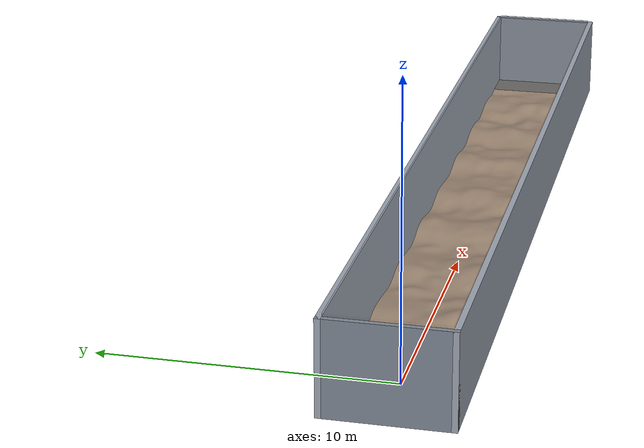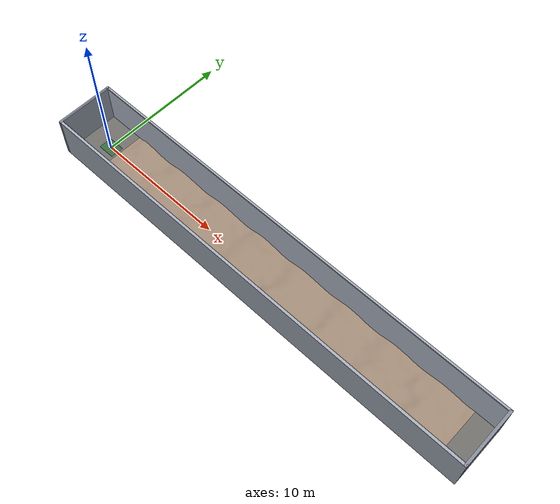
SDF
<?xml version='1.0' encoding='utf-8'?>
<sdf version="1.9">
  <world name="rocky_hall">
    <physics name="2ms_training" type="ignored">
      <max_step_size>0.002</max_step_size>
      <real_time_factor>1.0</real_time_factor>
    </physics>
    <plugin filename="gz-sim-physics-system" name="gz::sim::systems::Physics" />
    <plugin filename="gz-sim-user-commands-system" name="gz::sim::systems::UserCommands" />
    <plugin filename="gz-sim-scene-broadcaster-system" name="gz::sim::systems::SceneBroadcaster" />
    <gravity>0 0 -9.80665</gravity>
    <scene>
      <ambient>0.28 0.28 0.30 1</ambient>
      <background>0.08 0.09 0.12 1</background>
      <shadows>true</shadows>
      <grid>false</grid>
    </scene>
    <light name="lamp_01" type="point">
      <pose>2 0 2.7 0 0 0</pose>
      <cast_shadows>false</cast_shadows>
      <diffuse>0.95 0.92 0.84 1</diffuse>
      <specular>0.15 0.15 0.15 1</specular>
      <attenuation>
        <range>11</range>
        <constant>0.4</constant>
        <linear>0.08</linear>
        <quadratic>0.01</quadratic>
      </attenuation>
    </light>
    <light name="lamp_02" type="point">
      <pose>10 0 2.7 0 0 0</pose>
      <cast_shadows>false</cast_shadows>
      <diffuse>0.95 0.92 0.84 1</diffuse>
      <specular>0.15 0.15 0.15 1</specular>
      <attenuation>
        <range>11</range>
        <constant>0.4</constant>
        <linear>0.08</linear>
        <quadratic>0.01</quadratic>
      </attenuation>
    </light>
    <light name="lamp_03" type="point">
      <pose>18 0 2.7 0 0 0</pose>
      <cast_shadows>false</cast_shadows>
      <diffuse>0.95 0.92 0.84 1</diffuse>
      <specular>0.15 0.15 0.15 1</specular>
      <attenuation>
        <range>11</range>
        <constant>0.4</constant>
        <linear>0.08</linear>
        <quadratic>0.01</quadratic>
      </attenuation>
    </light>
    <light name="lamp_04" type="point">
      <pose>26 0 2.7 0 0 0</pose>
      <cast_shadows>false</cast_shadows>
      <diffuse>0.95 0.92 0.84 1</diffuse>
      <specular>0.15 0.15 0.15 1</specular>
      <attenuation>
        <range>11</range>
        <constant>0.4</constant>
        <linear>0.08</linear>
        <quadratic>0.01</quadratic>
      </attenuation>
    </light>
    <model name="enclosed_hall">
      <static>true</static>
      <link name="structure">
        <collision name="left_wall_collision">
          <pose>15 2.1 1.35 0 0 0</pose>
          <geometry>
            <box>
              <size>34.4 0.2 3.3</size>
            </box>
          </geometry>
        </collision>
        <visual name="left_wall_visual">
          <pose>15 2.1 1.35 0 0 0</pose>
          <geometry>
            <box>
              <size>34.4 0.2 3.3</size>
            </box>
          </geometry>
          <material>
            <ambient>0.52 0.55 0.60 1</ambient>
            <diffuse>0.62 0.65 0.70 1</diffuse>
          </material>
        </visual>
        <collision name="right_wall_collision">
          <pose>15 -2.1 1.35 0 0 0</pose>
          <geometry>
            <box>
              <size>34.4 0.2 3.3</size>
            </box>
          </geometry>
        </collision>
        <visual name="right_wall_visual">
          <pose>15 -2.1 1.35 0 0 0</pose>
          <geometry>
            <box>
              <size>34.4 0.2 3.3</size>
            </box>
          </geometry>
          <material>
            <ambient>0.52 0.55 0.60 1</ambient>
            <diffuse>0.62 0.65 0.70 1</diffuse>
          </material>
        </visual>
        <collision name="rear_wall_collision">
          <pose>-2.1 0 1.35 0 0 0</pose>
          <geometry>
            <box>
              <size>0.2 4.4 3.3</size>
            </box>
          </geometry>
        </collision>
        <visual name="rear_wall_visual">
          <pose>-2.1 0 1.35 0 0 0</pose>
          <geometry>
            <box>
              <size>0.2 4.4 3.3</size>
            </box>
          </geometry>
          <material>
            <ambient>0.40 0.43 0.48 1</ambient>
            <diffuse>0.50 0.53 0.58 1</diffuse>
          </material>
        </visual>
        <collision name="front_wall_collision">
          <pose>32.1 0 1.35 0 0 0</pose>
          <geometry>
            <box>
              <size>0.2 4.4 3.3</size>
            </box>
          </geometry>
        </collision>
        <visual name="front_wall_visual">
          <pose>32.1 0 1.35 0 0 0</pose>
          <geometry>
            <box>
              <size>0.2 4.4 3.3</size>
            </box>
          </geometry>
          <material>
            <ambient>0.40 0.43 0.48 1</ambient>
            <diffuse>0.50 0.53 0.58 1</diffuse>
          </material>
        </visual>
        <collision name="ceiling_collision">
          <pose>15 0 3.05 0 0 0</pose>
          <geometry>
            <box>
              <size>34 4 0.1</size>
            </box>
          </geometry>
        </collision>
        <visual name="ceiling_visual">
          <pose>15 0 3.05 0 0 0</pose>
          <geometry>
            <box>
              <size>34 4 0.1</size>
            </box>
          </geometry>
          <transparency>0.70</transparency>
          <cast_shadows>false</cast_shadows>
          <material>
            <ambient>0.45 0.47 0.52 1</ambient>
            <diffuse>0.55 0.57 0.62 1</diffuse>
          </material>
        </visual>
        <collision name="spawn_floor_collision">
          <pose>-0.600000 0 -0.05 0 0 0</pose>
          <geometry>
            <box>
              <size>2.800000 4 0.1</size>
            </box>
          </geometry>
          <surface>
            <friction>
              <ode>
                <mu>1.0</mu>
                <mu2>1.0</mu2>
              </ode>
            </friction>
          </surface>
        </collision>
        <visual name="spawn_floor_visual">
          <pose>-0.600000 0 -0.05 0 0 0</pose>
          <geometry>
            <box>
              <size>2.800000 4 0.1</size>
            </box>
          </geometry>
          <material>
            <ambient>0.38 0.36 0.32 1</ambient>
            <diffuse>0.38 0.36 0.32 1</diffuse>
          </material>
        </visual>
        <collision name="goal_floor_collision">
          <pose>31.250000 0 -0.05 0 0 0</pose>
          <geometry>
            <box>
              <size>1.500000 4 0.1</size>
            </box>
          </geometry>
          <surface>
            <friction>
              <ode>
                <mu>1.0</mu>
                <mu2>1.0</mu2>
              </ode>
            </friction>
          </surface>
        </collision>
        <visual name="goal_floor_visual">
          <pose>31.250000 0 -0.05 0 0 0</pose>
          <geometry>
            <box>
              <size>1.500000 4 0.1</size>
            </box>
          </geometry>
          <material>
            <ambient>0.38 0.36 0.32 1</ambient>
            <diffuse>0.38 0.36 0.32 1</diffuse>
          </material>
        </visual>
      </link>
    </model>
    <model name="spawn_clear_zone">
      <static>true</static>
      <link name="marker">
        <visual name="spawn_pad_visual">
          <pose>0 0 0.001 0 0 0</pose>
          <geometry>
            <box>
              <size>1.30 1.00 0.002</size>
            </box>
          </geometry>
          <material>
            <ambient>0.04 0.20 0.08 1</ambient>
            <diffuse>0.08 0.34 0.12 1</diffuse>
          </material>
        </visual>
      </link>
    </model>
    <model name="continuous_rocky_ground">
      <static>true</static>
      <link name="ground">
        <collision name="terrain_collision">
          <pose>15.65 0 0 0 0 0</pose>
          <geometry>
            <mesh>
              <uri>model://nino_description/terrains/rocky_ground.stl</uri>
            </mesh>
          </geometry>
          <surface>
            <friction>
              <ode>
                <mu>1.0</mu>
                <mu2>1.0</mu2>
              </ode>
            </friction>
          </surface>
        </collision>
        <visual name="terrain_visual">
          <pose>15.65 0 0 0 0 0</pose>
          <geometry>
            <mesh>
              <uri>model://nino_description/terrains/rocky_ground.stl</uri>
            </mesh>
          </geometry>
          <material>
            <ambient>0.55 0.43 0.32 1</ambient>
            <diffuse>0.65 0.52 0.39 1</diffuse>
            <specular>0.05 0.05 0.05 1</specular>
          </material>
        </visual>
      </link>
    </model>
  </world>
</sdf>
